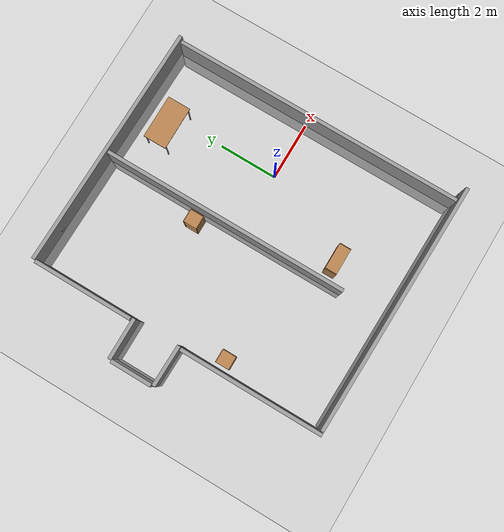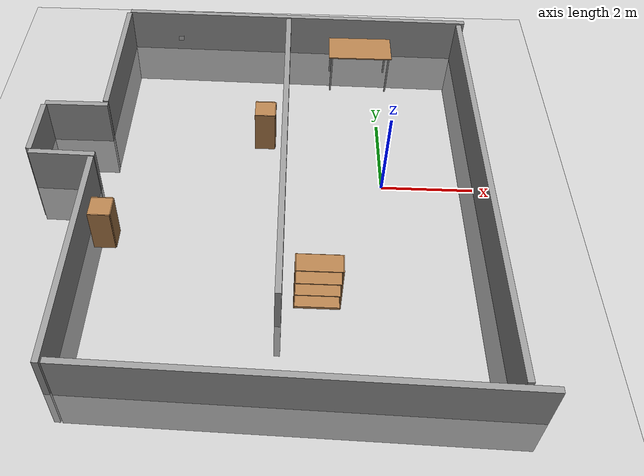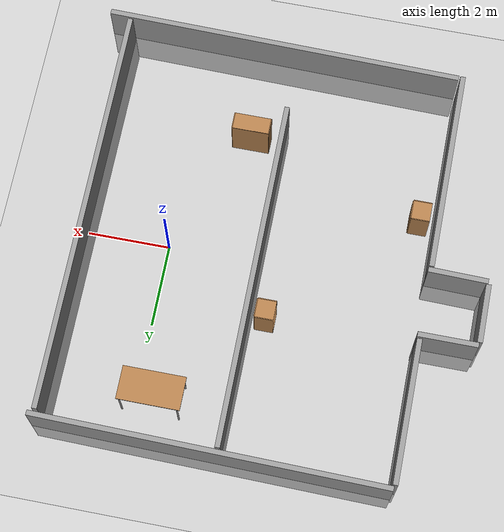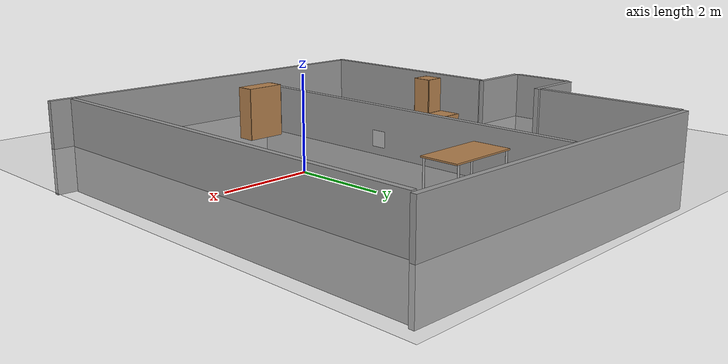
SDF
<sdf version="1.6">
 <world name="default">
  <light name="sun" type="directional">
   <pose>0 0 10 0 -0 0</pose>
   <diffuse>0.8 0.8 0.8 1</diffuse>
   <specular>0.2 0.2 0.2 1</specular>
   <attenuation>
    <range>1000</range>
    <constant>0.9</constant>
    <linear>0.01</linear>
    <quadratic>0.001</quadratic>
   </attenuation>
   <direction>-0.5 0.1 -0.9</direction>
  </light>
  <model name="ground_plane">
   <static>1</static>
   <link name="link">
    <collision name="collision">
     <geometry><plane><normal>0 0 1</normal><size>100 100</size></plane></geometry>
     <surface>
      <contact><collide_bitmask>65535</collide_bitmask></contact>
      <friction><ode><mu>100</mu><mu2>50</mu2></ode></friction>
     </surface>
    </collision>
    <visual name="visual">
     <cast_shadows>0</cast_shadows>
     <geometry><plane><normal>0 0 1</normal><size>100 100</size></plane></geometry>
     <material>
      <script><uri>file://media/materials/scripts/gazebo.material</uri><name>Gazebo/Grey</name></script>
     </material>
    </visual>
   </link>
  </model>
  <physics name="default_physics" default="0" type="ode">
   <real_time_update_rate>1000</real_time_update_rate>
   <max_step_size>0.001</max_step_size>
   <real_time_factor>1</real_time_factor>
   <ode>
    <solver>
     <type>quick</type>
     <iters>150</iters>
     <precon_iters>0</precon_iters>
     <sor>1.4</sor>
     <use_dynamic_moi_rescaling>1</use_dynamic_moi_rescaling>
    </solver>
    <constraints>
     <cfm>1e-05</cfm>
     <erp>0.2</erp>
     <contact_max_correcting_vel>2000</contact_max_correcting_vel>
     <contact_surface_layer>0.01</contact_surface_layer>
    </constraints>
   </ode>
  </physics>
  <scene><ambient>0.4 0.4 0.4 1</ambient><background>0.7 0.7 0.7 1</background><shadows>1</shadows></scene>
  <gravity>0 0 -9.8</gravity>
  <magnetic_field>6e-06 2.3e-05 -4.2e-05</magnetic_field>
  <atmosphere type="adiabatic"/>
  <audio><device>default</device></audio>
  <spherical_coordinates>
   <surface_model>EARTH_WGS84</surface_model>
   <latitude_deg>0</latitude_deg>
   <longitude_deg>0</longitude_deg>
   <elevation>0</elevation>
   <heading_deg>0</heading_deg>
  </spherical_coordinates>
  <model name="toiletenv">
   <link name="link_0">
    <inertial>
     <mass>3061.44</mass>
     <inertia><ixx>1709.99</ixx><ixy>0</ixy><ixz>0</ixz><iyy>1188.29</iyy><iyz>0</iyz><izz>529.767</izz></inertia>
    </inertial>
    <pose>-3.44068 0.35836 0 0 -0 0</pose>
    <gravity>0</gravity>
    <visual name="visual">
     <geometry><box><size>0.125789 1.43552 2.15452</size></box></geometry>
     <material>
      <lighting>1</lighting>
      <script><uri>file://media/materials/scripts/gazebo.material</uri><name>Gazebo/Grey</name></script>
      <shader type="vertex"><normal_map>__default__</normal_map></shader>
     </material>
    </visual>
    <collision name="collision">
     <geometry><box><size>0.125789 1.43552 2.15452</size></box></geometry>
     <surface>
      <friction>
       <ode><mu>1</mu><mu2>1</mu2><fdir1>0 0 0</fdir1><slip1>0</slip1><slip2>0</slip2></ode>
       <torsional>
        <coefficient>1</coefficient>
        <patch_radius>0</patch_radius>
        <surface_radius>0</surface_radius>
        <use_patch_radius>1</use_patch_radius>
        <ode><slip>0</slip></ode>
       </torsional>
      </friction>
      <bounce><restitution_coefficient>0</restitution_coefficient><threshold>1e+06</threshold></bounce>
      <contact>
       <collide_without_contact>0</collide_without_contact>
       <collide_without_contact_bitmask>1</collide_without_contact_bitmask>
       <collide_bitmask>1</collide_bitmask>
       <ode>
        <soft_cfm>0</soft_cfm>
        <soft_erp>0.2</soft_erp>
        <kp>1e+13</kp>
        <kd>1</kd>
        <max_vel>0.01</max_vel>
        <min_depth>0</min_depth>
       </ode>
       <bullet>
        <split_impulse>1</split_impulse>
        <split_impulse_penetration_threshold>-0.01</split_impulse_penetration_threshold>
        <soft_cfm>0</soft_cfm>
        <soft_erp>0.2</soft_erp>
        <kp>1e+13</kp>
        <kd>1</kd>
       </bullet>
      </contact>
     </surface>
    </collision>
   </link>
   <link name="link_0_clone">
    <inertial>
     <mass>3061.44</mass>
     <inertia><ixx>1709.99</ixx><ixy>0</ixy><ixz>0</ixz><iyy>1188.29</iyy><iyz>0</iyz><izz>529.767</izz></inertia>
    </inertial>
    <pose>-2.70872 1.14414 0 0 0 -1.57036</pose>
    <gravity>0</gravity>
    <visual name="visual">
     <geometry><box><size>0.125789 1.43552 2.15452</size></box></geometry>
     <material>
      <lighting>1</lighting>
      <script><uri>file://media/materials/scripts/gazebo.material</uri><name>Gazebo/Grey</name></script>
      <shader type="vertex"><normal_map>__default__</normal_map></shader>
     </material>
    </visual>
    <collision name="collision">
     <geometry><box><size>0.125789 1.43552 2.15452</size></box></geometry>
     <surface>
      <friction>
       <ode><mu>1</mu><mu2>1</mu2><fdir1>0 0 0</fdir1><slip1>0</slip1><slip2>0</slip2></ode>
       <torsional>
        <coefficient>1</coefficient>
        <patch_radius>0</patch_radius>
        <surface_radius>0</surface_radius>
        <use_patch_radius>1</use_patch_radius>
        <ode><slip>0</slip></ode>
       </torsional>
      </friction>
      <bounce><restitution_coefficient>0</restitution_coefficient><threshold>1e+06</threshold></bounce>
      <contact>
       <collide_without_contact>0</collide_without_contact>
       <collide_without_contact_bitmask>1</collide_without_contact_bitmask>
       <collide_bitmask>1</collide_bitmask>
       <ode>
        <soft_cfm>0</soft_cfm>
        <soft_erp>0.2</soft_erp>
        <kp>1e+13</kp>
        <kd>1</kd>
        <max_vel>0.01</max_vel>
        <min_depth>0</min_depth>
       </ode>
       <bullet>
        <split_impulse>1</split_impulse>
        <split_impulse_penetration_threshold>-0.01</split_impulse_penetration_threshold>
        <soft_cfm>0</soft_cfm>
        <soft_erp>0.2</soft_erp>
        <kp>1e+13</kp>
        <kd>1</kd>
       </bullet>
      </contact>
     </surface>
    </collision>
   </link>
   <link name="link_0_clone_0">
    <inertial>
     <mass>3061.44</mass>
     <inertia><ixx>1709.99</ixx><ixy>0</ixy><ixz>0</ixz><iyy>1188.29</iyy><iyz>0</iyz><izz>529.767</izz></inertia>
    </inertial>
    <pose>-2.70687 -0.448529 0 0 -0 1.54952</pose>
    <gravity>0</gravity>
    <visual name="visual">
     <geometry><box><size>0.125789 1.43552 2.15452</size></box></geometry>
     <material>
      <lighting>1</lighting>
      <script><uri>file://media/materials/scripts/gazebo.material</uri><name>Gazebo/Grey</name></script>
      <shader type="vertex"><normal_map>__default__</normal_map></shader>
     </material>
    </visual>
    <collision name="collision">
     <geometry><box><size>0.125789 1.43552 2.15452</size></box></geometry>
     <surface>
      <friction>
       <ode><mu>1</mu><mu2>1</mu2><fdir1>0 0 0</fdir1><slip1>0</slip1><slip2>0</slip2></ode>
       <torsional>
        <coefficient>1</coefficient>
        <patch_radius>0</patch_radius>
        <surface_radius>0</surface_radius>
        <use_patch_radius>1</use_patch_radius>
        <ode><slip>0</slip></ode>
       </torsional>
      </friction>
      <bounce><restitution_coefficient>0</restitution_coefficient><threshold>1e+06</threshold></bounce>
      <contact>
       <collide_without_contact>0</collide_without_contact>
       <collide_without_contact_bitmask>1</collide_without_contact_bitmask>
       <collide_bitmask>1</collide_bitmask>
       <ode>
        <soft_cfm>0</soft_cfm>
        <soft_erp>0.2</soft_erp>
        <kp>1e+13</kp>
        <kd>1</kd>
        <max_vel>0.01</max_vel>
        <min_depth>0</min_depth>
       </ode>
       <bullet>
        <split_impulse>1</split_impulse>
        <split_impulse_penetration_threshold>-0.01</split_impulse_penetration_threshold>
        <soft_cfm>0</soft_cfm>
        <soft_erp>0.2</soft_erp>
        <kp>1e+13</kp>
        <kd>1</kd>
       </bullet>
      </contact>
     </surface>
    </collision>
   </link>
   <link name="link_0_clone_1">
    <inertial>
     <mass>10647.6</mass>
     <inertia><ixx>26236.3</ixx><ixy>0</ixy><ixz>0</ixz><iyy>4132.83</iyy><iyz>0</iyz><izz>22131.5</izz></inertia>
    </inertial>
    <pose>-2.05907 -3.04924 0 0 -0 0</pose>
    <gravity>0</gravity>
    <visual name="visual">
     <geometry><box><size>0.125789 4.99268 2.15452</size></box></geometry>
     <material>
      <lighting>1</lighting>
      <script><uri>file://media/materials/scripts/gazebo.material</uri><name>Gazebo/Grey</name></script>
      <shader type="vertex"><normal_map>__default__</normal_map></shader>
     </material>
    </visual>
    <collision name="collision">
     <geometry><box><size>0.125789 4.99268 2.15452</size></box></geometry>
     <surface>
      <friction>
       <ode><mu>1</mu><mu2>1</mu2><fdir1>0 0 0</fdir1><slip1>0</slip1><slip2>0</slip2></ode>
       <torsional>
        <coefficient>1</coefficient>
        <patch_radius>0</patch_radius>
        <surface_radius>0</surface_radius>
        <use_patch_radius>1</use_patch_radius>
        <ode><slip>0</slip></ode>
       </torsional>
      </friction>
      <bounce><restitution_coefficient>0</restitution_coefficient><threshold>1e+06</threshold></bounce>
      <contact>
       <collide_without_contact>0</collide_without_contact>
       <collide_without_contact_bitmask>1</collide_without_contact_bitmask>
       <collide_bitmask>1</collide_bitmask>
       <ode>
        <soft_cfm>0</soft_cfm>
        <soft_erp>0.2</soft_erp>
        <kp>1e+13</kp>
        <kd>1</kd>
        <max_vel>0.01</max_vel>
        <min_depth>0</min_depth>
       </ode>
       <bullet>
        <split_impulse>1</split_impulse>
        <split_impulse_penetration_threshold>-0.01</split_impulse_penetration_threshold>
        <soft_cfm>0</soft_cfm>
        <soft_erp>0.2</soft_erp>
        <kp>1e+13</kp>
        <kd>1</kd>
       </bullet>
      </contact>
     </surface>
    </collision>
   </link>
   <link name="link_0_clone_2">
    <inertial>
     <mass>7404.1</mass>
     <inertia><ixx>10301.1</ixx><ixy>0</ixy><ixz>0</ixz><iyy>2873.89</iyy><iyz>0</iyz><izz>7446.75</izz></inertia>
    </inertial>
    <pose>-2.06068 2.98173 0 0 -0 0</pose>
    <gravity>0</gravity>
    <visual name="visual">
     <geometry><box><size>0.125789 3.47179 2.15452</size></box></geometry>
     <material>
      <lighting>1</lighting>
      <script><uri>file://media/materials/scripts/gazebo.material</uri><name>Gazebo/Grey</name></script>
      <shader type="vertex"><normal_map>__default__</normal_map></shader>
     </material>
    </visual>
    <collision name="collision">
     <geometry><box><size>0.125789 3.47179 2.15452</size></box></geometry>
     <surface>
      <friction>
       <ode><mu>1</mu><mu2>1</mu2><fdir1>0 0 0</fdir1><slip1>0</slip1><slip2>0</slip2></ode>
       <torsional>
        <coefficient>1</coefficient>
        <patch_radius>0</patch_radius>
        <surface_radius>0</surface_radius>
        <use_patch_radius>1</use_patch_radius>
        <ode><slip>0</slip></ode>
       </torsional>
      </friction>
      <bounce><restitution_coefficient>0</restitution_coefficient><threshold>1e+06</threshold></bounce>
      <contact>
       <collide_without_contact>0</collide_without_contact>
       <collide_without_contact_bitmask>1</collide_without_contact_bitmask>
       <collide_bitmask>1</collide_bitmask>
       <ode>
        <soft_cfm>0</soft_cfm>
        <soft_erp>0.2</soft_erp>
        <kp>1e+13</kp>
        <kd>1</kd>
        <max_vel>0.01</max_vel>
        <min_depth>0</min_depth>
       </ode>
       <bullet>
        <split_impulse>1</split_impulse>
        <split_impulse_penetration_threshold>-0.01</split_impulse_penetration_threshold>
        <soft_cfm>0</soft_cfm>
        <soft_erp>0.2</soft_erp>
        <kp>1e+13</kp>
        <kd>1</kd>
       </bullet>
      </contact>
     </surface>
    </collision>
   </link>
   <link name="link_0_clone_3">
    <inertial>
     <mass>18266.8</mass>
     <inertia><ixx>118745</ixx><ixy>0</ixy><ixz>0</ixz><iyy>7090.22</iyy><iyz>0</iyz><izz>111703</izz></inertia>
    </inertial>
    <pose>2.02981 0.357389 0 0 -0 0</pose>
    <gravity>0</gravity>
    <visual name="visual">
     <geometry><box><size>0.125789 8.56535 2.15452</size></box></geometry>
     <material>
      <lighting>1</lighting>
      <script><uri>file://media/materials/scripts/gazebo.material</uri><name>Gazebo/Grey</name></script>
      <shader type="vertex"><normal_map>__default__</normal_map></shader>
     </material>
    </visual>
    <collision name="collision">
     <geometry><box><size>0.125789 8.56535 2.15452</size></box></geometry>
     <surface>
      <friction>
       <ode><mu>1</mu><mu2>1</mu2><fdir1>0 0 0</fdir1><slip1>0</slip1><slip2>0</slip2></ode>
       <torsional>
        <coefficient>1</coefficient>
        <patch_radius>0</patch_radius>
        <surface_radius>0</surface_radius>
        <use_patch_radius>1</use_patch_radius>
        <ode><slip>0</slip></ode>
       </torsional>
      </friction>
      <bounce><restitution_coefficient>0</restitution_coefficient><threshold>1e+06</threshold></bounce>
      <contact>
       <collide_without_contact>0</collide_without_contact>
       <collide_without_contact_bitmask>1</collide_without_contact_bitmask>
       <collide_bitmask>1</collide_bitmask>
       <ode>
        <soft_cfm>0</soft_cfm>
        <soft_erp>0.2</soft_erp>
        <kp>1e+13</kp>
        <kd>1</kd>
        <max_vel>0.01</max_vel>
        <min_depth>0</min_depth>
       </ode>
       <bullet>
        <split_impulse>1</split_impulse>
        <split_impulse_penetration_threshold>-0.01</split_impulse_penetration_threshold>
        <soft_cfm>0</soft_cfm>
        <soft_erp>0.2</soft_erp>
        <kp>1e+13</kp>
        <kd>1</kd>
       </bullet>
      </contact>
     </surface>
    </collision>
   </link>
   <link name="link_0_clone_3_clone">
    <inertial>
     <mass>21541</mass>
     <inertia><ixx>191473</ixx><ixy>0</ixy><ixz>0</ixz><iyy>8361.12</iyy><iyz>0</iyz><izz>183169</izz></inertia>
    </inertial>
    <pose>6.30349 -0.503106 0 0 -0 0</pose>
    <gravity>0</gravity>
    <visual name="visual">
     <geometry><box><size>0.125789 10.1006 2.15452</size></box></geometry>
     <material>
      <lighting>1</lighting>
      <script><uri>file://media/materials/scripts/gazebo.material</uri><name>Gazebo/Grey</name></script>
      <shader type="vertex"><normal_map>__default__</normal_map></shader>
     </material>
    </visual>
    <collision name="collision">
     <geometry><box><size>0.125789 10.1006 2.15452</size></box></geometry>
     <surface>
      <friction>
       <ode><mu>1</mu><mu2>1</mu2><fdir1>0 0 0</fdir1><slip1>0</slip1><slip2>0</slip2></ode>
       <torsional>
        <coefficient>1</coefficient>
        <patch_radius>0</patch_radius>
        <surface_radius>0</surface_radius>
        <use_patch_radius>1</use_patch_radius>
        <ode><slip>0</slip></ode>
       </torsional>
      </friction>
      <bounce><restitution_coefficient>0</restitution_coefficient><threshold>1e+06</threshold></bounce>
      <contact>
       <collide_without_contact>0</collide_without_contact>
       <collide_without_contact_bitmask>1</collide_without_contact_bitmask>
       <collide_bitmask>1</collide_bitmask>
       <ode>
        <soft_cfm>0</soft_cfm>
        <soft_erp>0.2</soft_erp>
        <kp>1e+13</kp>
        <kd>1</kd>
        <max_vel>0.01</max_vel>
        <min_depth>0</min_depth>
       </ode>
       <bullet>
        <split_impulse>1</split_impulse>
        <split_impulse_penetration_threshold>-0.01</split_impulse_penetration_threshold>
        <soft_cfm>0</soft_cfm>
        <soft_erp>0.2</soft_erp>
        <kp>1e+13</kp>
        <kd>1</kd>
       </bullet>
      </contact>
     </surface>
    </collision>
   </link>
   <link name="link_0_clone_4">
    <inertial>
     <mass>18126.2</mass>
     <inertia><ixx>116131</ixx><ixy>0</ixy><ixz>0</ixz><iyy>7035.65</iyy><iyz>0</iyz><izz>109143</izz></inertia>
    </inertial>
    <pose>2.20964 4.73685 0 0 0 -1.587</pose>
    <gravity>0</gravity>
    <visual name="visual">
     <geometry><box><size>0.125789 8.49938 2.15452</size></box></geometry>
     <material>
      <lighting>1</lighting>
      <script><uri>file://media/materials/scripts/gazebo.material</uri><name>Gazebo/Grey</name></script>
      <shader type="vertex"><normal_map>__default__</normal_map></shader>
     </material>
    </visual>
    <collision name="collision">
     <geometry><box><size>0.125789 8.49938 2.15452</size></box></geometry>
     <surface>
      <friction>
       <ode><mu>1</mu><mu2>1</mu2><fdir1>0 0 0</fdir1><slip1>0</slip1><slip2>0</slip2></ode>
       <torsional>
        <coefficient>1</coefficient>
        <patch_radius>0</patch_radius>
        <surface_radius>0</surface_radius>
        <use_patch_radius>1</use_patch_radius>
        <ode><slip>0</slip></ode>
       </torsional>
      </friction>
      <bounce><restitution_coefficient>0</restitution_coefficient><threshold>1e+06</threshold></bounce>
      <contact>
       <collide_without_contact>0</collide_without_contact>
       <collide_without_contact_bitmask>1</collide_without_contact_bitmask>
       <collide_bitmask>1</collide_bitmask>
       <ode>
        <soft_cfm>0</soft_cfm>
        <soft_erp>0.2</soft_erp>
        <kp>1e+13</kp>
        <kd>1</kd>
        <max_vel>0.01</max_vel>
        <min_depth>0</min_depth>
       </ode>
       <bullet>
        <split_impulse>1</split_impulse>
        <split_impulse_penetration_threshold>-0.01</split_impulse_penetration_threshold>
        <soft_cfm>0</soft_cfm>
        <soft_erp>0.2</soft_erp>
        <kp>1e+13</kp>
        <kd>1</kd>
       </bullet>
      </contact>
     </surface>
    </collision>
   </link>
   <link name="link_0_clone_5">
    <inertial>
     <mass>18728.3</mass>
     <inertia><ixx>127604</ixx><ixy>0</ixy><ixz>0</ixz><iyy>7269.34</iyy><iyz>0</iyz><izz>120384</izz></inertia>
    </inertial>
    <pose>2.43307 -5.57761 0 0 0 -1.59076</pose>
    <gravity>0</gravity>
    <visual name="visual">
     <geometry><box><size>0.125789 8.78176 2.15452</size></box></geometry>
     <material>
      <lighting>1</lighting>
      <script><uri>file://media/materials/scripts/gazebo.material</uri><name>Gazebo/Grey</name></script>
      <shader type="vertex"><normal_map>__default__</normal_map></shader>
     </material>
    </visual>
    <collision name="collision">
     <geometry><box><size>0.125789 8.78176 2.15452</size></box></geometry>
     <surface>
      <friction>
       <ode><mu>1</mu><mu2>1</mu2><fdir1>0 0 0</fdir1><slip1>0</slip1><slip2>0</slip2></ode>
       <torsional>
        <coefficient>1</coefficient>
        <patch_radius>0</patch_radius>
        <surface_radius>0</surface_radius>
        <use_patch_radius>1</use_patch_radius>
        <ode><slip>0</slip></ode>
       </torsional>
      </friction>
      <bounce><restitution_coefficient>0</restitution_coefficient><threshold>1e+06</threshold></bounce>
      <contact>
       <collide_without_contact>0</collide_without_contact>
       <collide_without_contact_bitmask>1</collide_without_contact_bitmask>
       <collide_bitmask>1</collide_bitmask>
       <ode>
        <soft_cfm>0</soft_cfm>
        <soft_erp>0.2</soft_erp>
        <kp>1e+13</kp>
        <kd>1</kd>
        <max_vel>0.01</max_vel>
        <min_depth>0</min_depth>
       </ode>
       <bullet>
        <split_impulse>1</split_impulse>
        <split_impulse_penetration_threshold>-0.01</split_impulse_penetration_threshold>
        <soft_cfm>0</soft_cfm>
        <soft_erp>0.2</soft_erp>
        <kp>1e+13</kp>
        <kd>1</kd>
       </bullet>
      </contact>
     </surface>
    </collision>
   </link>
   <static>1</static>
   <pose>-4.22209 0.180638 0 0 -0 0</pose>
  </model>
  <model name="table">
   <static>1</static>
   <link name="link">
    <collision name="surface">
     <pose>0 0 1 0 -0 0</pose>
     <geometry><box><size>1.5 0.8 0.03</size></box></geometry>
     <surface><friction><ode><mu>0.6</mu><mu2>0.6</mu2></ode></friction></surface>
    </collision>
    <visual name="visual1">
     <pose>0 0 1 0 -0 0</pose>
     <geometry><box><size>1.5 0.8 0.03</size></box></geometry>
     <material>
      <script><uri>file://media/materials/scripts/gazebo.material</uri><name>Gazebo/Wood</name></script>
     </material>
    </visual>
    <collision name="front_left_leg">
     <pose>0.68 0.38 0.5 0 -0 0</pose>
     <geometry><cylinder><radius>0.02</radius><length>1</length></cylinder></geometry>
    </collision>
    <visual name="front_left_leg">
     <pose>0.68 0.38 0.5 0 -0 0</pose>
     <geometry><cylinder><radius>0.02</radius><length>1</length></cylinder></geometry>
     <material>
      <script><uri>file://media/materials/scripts/gazebo.material</uri><name>Gazebo/Grey</name></script>
     </material>
    </visual>
    <collision name="front_right_leg">
     <pose>0.68 -0.38 0.5 0 -0 0</pose>
     <geometry><cylinder><radius>0.02</radius><length>1</length></cylinder></geometry>
    </collision>
    <visual name="front_right_leg">
     <pose>0.68 -0.38 0.5 0 -0 0</pose>
     <geometry><cylinder><radius>0.02</radius><length>1</length></cylinder></geometry>
     <material>
      <script><uri>file://media/materials/scripts/gazebo.material</uri><name>Gazebo/Grey</name></script>
     </material>
    </visual>
    <collision name="back_right_leg">
     <pose>-0.68 -0.38 0.5 0 -0 0</pose>
     <geometry><cylinder><radius>0.02</radius><length>1</length></cylinder></geometry>
    </collision>
    <visual name="back_right_leg">
     <pose>-0.68 -0.38 0.5 0 -0 0</pose>
     <geometry><cylinder><radius>0.02</radius><length>1</length></cylinder></geometry>
     <material>
      <script><uri>file://media/materials/scripts/gazebo.material</uri><name>Gazebo/Grey</name></script>
     </material>
    </visual>
    <collision name="back_left_leg">
     <pose>-0.68 0.38 0.5 0 -0 0</pose>
     <geometry><cylinder><radius>0.02</radius><length>1</length></cylinder></geometry>
    </collision>
    <visual name="back_left_leg">
     <pose>-0.68 0.38 0.5 0 -0 0</pose>
     <geometry><cylinder><radius>0.02</radius><length>1</length></cylinder></geometry>
     <material>
      <script><uri>file://media/materials/scripts/gazebo.material</uri><name>Gazebo/Grey</name></script>
     </material>
    </visual>
   </link>
   <pose>-0.426692 3.73604 0 0 -0 0</pose>
  </model>
  <model name="bookshelf">
   <static>1</static>
   <link name="link">
    <inertial><mass>1</mass></inertial>
    <collision name="back">
     <pose>0 0.005 0.6 0 -0 0</pose>
     <geometry><box><size>0.9 0.01 1.2</size></box></geometry>
    </collision>
    <visual name="visual1">
     <pose>0 0.005 0.6 0 -0 0</pose>
     <geometry><box><size>0.9 0.01 1.2</size></box></geometry>
     <material>
      <script><uri>file://media/materials/scripts/gazebo.material</uri><name>Gazebo/Wood</name></script>
     </material>
    </visual>
    <collision name="left_side">
     <pose>0.45 -0.195 0.6 0 -0 0</pose>
     <geometry><box><size>0.02 0.4 1.2</size></box></geometry>
    </collision>
    <visual name="visual2">
     <pose>0.45 -0.195 0.6 0 -0 0</pose>
     <geometry><box><size>0.02 0.4 1.2</size></box></geometry>
     <material>
      <script><uri>file://media/materials/scripts/gazebo.material</uri><name>Gazebo/Wood</name></script>
     </material>
    </visual>
    <collision name="right_side">
     <pose>-0.45 -0.195 0.6 0 -0 0</pose>
     <geometry><box><size>0.02 0.4 1.2</size></box></geometry>
    </collision>
    <visual name="visual3">
     <pose>-0.45 -0.195 0.6 0 -0 0</pose>
     <geometry><box><size>0.02 0.4 1.2</size></box></geometry>
     <material>
      <script><uri>file://media/materials/scripts/gazebo.material</uri><name>Gazebo/Wood</name></script>
     </material>
    </visual>
    <collision name="bottom">
     <pose>0 -0.195 0.03 0 -0 0</pose>
     <geometry><box><size>0.88 0.4 0.06</size></box></geometry>
    </collision>
    <visual name="visual4">
     <pose>0 -0.195 0.03 0 -0 0</pose>
     <geometry><box><size>0.88 0.4 0.06</size></box></geometry>
     <material>
      <script><uri>file://media/materials/scripts/gazebo.material</uri><name>Gazebo/Wood</name></script>
     </material>
    </visual>
    <collision name="top">
     <pose>0 -0.195 1.19 0 -0 0</pose>
     <geometry><box><size>0.88 0.4 0.02</size></box></geometry>
    </collision>
    <visual name="visual5">
     <pose>0 -0.195 1.19 0 -0 0</pose>
     <geometry><box><size>0.88 0.4 0.02</size></box></geometry>
     <material>
      <script><uri>file://media/materials/scripts/gazebo.material</uri><name>Gazebo/Wood</name></script>
     </material>
    </visual>
    <collision name="low_shelf">
     <pose>0 -0.195 0.43 0 -0 0</pose>
     <geometry><box><size>0.88 0.4 0.02</size></box></geometry>
    </collision>
    <visual name="visual6">
     <pose>0 -0.195 0.43 0 -0 0</pose>
     <geometry><box><size>0.88 0.4 0.02</size></box></geometry>
     <material>
      <script><uri>file://media/materials/scripts/gazebo.material</uri><name>Gazebo/Wood</name></script>
     </material>
    </visual>
    <collision name="high_shelf">
     <pose>0 -0.195 0.8 0 -0 0</pose>
     <geometry><box><size>0.88 0.4 0.02</size></box></geometry>
    </collision>
    <visual name="visual7">
     <pose>0 -0.195 0.8 0 -0 0</pose>
     <geometry><box><size>0.88 0.4 0.02</size></box></geometry>
     <material>
      <script><uri>file://media/materials/scripts/gazebo.material</uri><name>Gazebo/Wood</name></script>
     </material>
    </visual>
   </link>
   <pose>-1.43799 -2.91079 0 0 -0 0</pose>
  </model>
  <model name="cabinet">
   <static>1</static>
   <link name="cabinet_bottom_plate">
    <inertial>
     <pose>0 0 -1 0 -0 0</pose>
     <inertia><ixx>2.05</ixx><ixy>0</ixy><ixz>0</ixz><iyy>2.05</iyy><iyz>0</iyz><izz>2.05</izz></inertia>
     <mass>25</mass>
    </inertial>
    <collision name="cabinet_bottom_plate_geom">
     <pose>0 0 0.01 0 -0 0</pose>
     <geometry><box><size>0.45 0.45 0.02</size></box></geometry>
    </collision>
    <visual name="cabinet_bottom_plate_geom_visual">
     <pose>0 0 0.01 0 -0 0</pose>
     <geometry><box><size>0.45 0.45 0.02</size></box></geometry>
     <material>
      <script><uri>file://media/materials/scripts/gazebo.material</uri><name>Gazebo/Wood</name></script>
     </material>
    </visual>
    <collision name="cabinet_bottom_plate_geom_cabinet_back_plate">
     <pose>0.235 0 0.51 0 -0 0</pose>
     <geometry><box><size>0.02 0.45 1.02</size></box></geometry>
    </collision>
    <visual name="cabinet_bottom_plate_geom_cabinet_back_plate_visual">
     <pose>0.235 0 0.51 0 -0 0</pose>
     <geometry><box><size>0.02 0.45 1.02</size></box></geometry>
     <material>
      <script><uri>file://media/materials/scripts/gazebo.material</uri><name>Gazebo/Wood</name></script>
     </material>
    </visual>
    <collision name="cabinet_bottom_plate_geom_cabinet_left_plate">
     <pose>0 0.235 0.51 0 -0 0</pose>
     <geometry><box><size>0.45 0.02 1.02</size></box></geometry>
    </collision>
    <visual name="cabinet_bottom_plate_geom_cabinet_left_plate_visual">
     <pose>0 0.235 0.51 0 -0 0</pose>
     <geometry><box><size>0.45 0.02 1.02</size></box></geometry>
     <material>
      <script><uri>file://media/materials/scripts/gazebo.material</uri><name>Gazebo/Wood</name></script>
     </material>
    </visual>
    <collision name="cabinet_bottom_plate_geom_cabinet_middle_plate">
     <pose>0 0 0.51 0 -0 0</pose>
     <geometry><box><size>0.45 0.45 0.02</size></box></geometry>
    </collision>
    <visual name="cabinet_bottom_plate_geom_cabinet_middle_plate_visual">
     <pose>0 0 0.51 0 -0 0</pose>
     <geometry><box><size>0.45 0.45 0.02</size></box></geometry>
     <material>
      <script><uri>file://media/materials/scripts/gazebo.material</uri><name>Gazebo/Wood</name></script>
     </material>
    </visual>
    <collision name="cabinet_bottom_plate_geom_cabinet_right_plate">
     <pose>0 -0.235 0.51 0 -0 0</pose>
     <geometry><box><size>0.45 0.02 1.02</size></box></geometry>
    </collision>
    <visual name="cabinet_bottom_plate_geom_cabinet_right_plate_visual">
     <pose>0 -0.235 0.51 0 -0 0</pose>
     <geometry><box><size>0.45 0.02 1.02</size></box></geometry>
     <material>
      <script><uri>file://media/materials/scripts/gazebo.material</uri><name>Gazebo/Wood</name></script>
     </material>
    </visual>
    <collision name="cabinet_bottom_plate_geom_cabinet_top_plate">
     <pose>0 0 1.01 0 -0 0</pose>
     <geometry><box><size>0.45 0.45 0.02</size></box></geometry>
    </collision>
    <visual name="cabinet_bottom_plate_geom_cabinet_top_plate_visual">
     <pose>0 0 1.01 0 -0 0</pose>
     <geometry><box><size>0.45 0.45 0.02</size></box></geometry>
     <material>
      <script><uri>file://media/materials/scripts/gazebo.material</uri><name>Gazebo/Wood</name></script>
     </material>
    </visual>
   </link>
   <pose>-2.64528 1.38874 0 0 -0 0</pose>
  </model>
  <model name="cabinet_0">
   <static>1</static>
   <link name="cabinet_bottom_plate">
    <inertial>
     <pose>0 0 -1 0 -0 0</pose>
     <inertia><ixx>2.05</ixx><ixy>0</ixy><ixz>0</ixz><iyy>2.05</iyy><iyz>0</iyz><izz>2.05</izz></inertia>
     <mass>25</mass>
    </inertial>
    <collision name="cabinet_bottom_plate_geom">
     <pose>0 0 0.01 0 -0 0</pose>
     <geometry><box><size>0.45 0.45 0.02</size></box></geometry>
    </collision>
    <visual name="cabinet_bottom_plate_geom_visual">
     <pose>0 0 0.01 0 -0 0</pose>
     <geometry><box><size>0.45 0.45 0.02</size></box></geometry>
     <material>
      <script><uri>file://media/materials/scripts/gazebo.material</uri><name>Gazebo/Wood</name></script>
     </material>
    </visual>
    <collision name="cabinet_bottom_plate_geom_cabinet_back_plate">
     <pose>0.235 0 0.51 0 -0 0</pose>
     <geometry><box><size>0.02 0.45 1.02</size></box></geometry>
    </collision>
    <visual name="cabinet_bottom_plate_geom_cabinet_back_plate_visual">
     <pose>0.235 0 0.51 0 -0 0</pose>
     <geometry><box><size>0.02 0.45 1.02</size></box></geometry>
     <material>
      <script><uri>file://media/materials/scripts/gazebo.material</uri><name>Gazebo/Wood</name></script>
     </material>
    </visual>
    <collision name="cabinet_bottom_plate_geom_cabinet_left_plate">
     <pose>0 0.235 0.51 0 -0 0</pose>
     <geometry><box><size>0.45 0.02 1.02</size></box></geometry>
    </collision>
    <visual name="cabinet_bottom_plate_geom_cabinet_left_plate_visual">
     <pose>0 0.235 0.51 0 -0 0</pose>
     <geometry><box><size>0.45 0.02 1.02</size></box></geometry>
     <material>
      <script><uri>file://media/materials/scripts/gazebo.material</uri><name>Gazebo/Wood</name></script>
     </material>
    </visual>
    <collision name="cabinet_bottom_plate_geom_cabinet_middle_plate">
     <pose>0 0 0.51 0 -0 0</pose>
     <geometry><box><size>0.45 0.45 0.02</size></box></geometry>
    </collision>
    <visual name="cabinet_bottom_plate_geom_cabinet_middle_plate_visual">
     <pose>0 0 0.51 0 -0 0</pose>
     <geometry><box><size>0.45 0.45 0.02</size></box></geometry>
     <material>
      <script><uri>file://media/materials/scripts/gazebo.material</uri><name>Gazebo/Wood</name></script>
     </material>
    </visual>
    <collision name="cabinet_bottom_plate_geom_cabinet_right_plate">
     <pose>0 -0.235 0.51 0 -0 0</pose>
     <geometry><box><size>0.45 0.02 1.02</size></box></geometry>
    </collision>
    <visual name="cabinet_bottom_plate_geom_cabinet_right_plate_visual">
     <pose>0 -0.235 0.51 0 -0 0</pose>
     <geometry><box><size>0.45 0.02 1.02</size></box></geometry>
     <material>
      <script><uri>file://media/materials/scripts/gazebo.material</uri><name>Gazebo/Wood</name></script>
     </material>
    </visual>
    <collision name="cabinet_bottom_plate_geom_cabinet_top_plate">
     <pose>0 0 1.01 0 -0 0</pose>
     <geometry><box><size>0.45 0.45 0.02</size></box></geometry>
    </collision>
    <visual name="cabinet_bottom_plate_geom_cabinet_top_plate_visual">
     <pose>0 0 1.01 0 -0 0</pose>
     <geometry><box><size>0.45 0.45 0.02</size></box></geometry>
     <material>
      <script><uri>file://media/materials/scripts/gazebo.material</uri><name>Gazebo/Wood</name></script>
     </material>
    </visual>
   </link>
   <pose>-5.8369 -1.7199 0 0 -0 0</pose>
  </model>
  <model name="QrCube2.0">
   <link name="link_0">
    <inertial>
     <mass>1</mass>
     <inertia>
      <ixx>0.166667</ixx>
      <ixy>0</ixy>
      <ixz>0</ixz>
      <iyy>0.166667</iyy>
      <iyz>0</iyz>
      <izz>0.166667</izz>
     </inertia>
    </inertial>
    <pose>0 4e-06 0 0 -0 0</pose>
    <visual name="visual">
     <geometry>
      <mesh>
       <uri>/home/nick/catkin_ws/src/toiletcleaner/meshes/QR-codes/StandardQRCube.dae</uri>
       <scale>1 1 1</scale>
      </mesh>
     </geometry>
    </visual>
    <collision name="collision">
     <geometry>
      <mesh>
       <uri>/home/nick/catkin_ws/src/toiletcleaner/meshes/QR-codes/StandardQRCube.dae</uri>
       <scale>1 1 1</scale>
      </mesh>
     </geometry>
     <surface>
      <friction>
       <ode><mu>1</mu><mu2>1</mu2><fdir1>0 0 0</fdir1><slip1>0</slip1><slip2>0</slip2></ode>
       <torsional>
        <coefficient>1</coefficient>
        <patch_radius>0</patch_radius>
        <surface_radius>0</surface_radius>
        <use_patch_radius>1</use_patch_radius>
        <ode><slip>0</slip></ode>
       </torsional>
      </friction>
      <bounce><restitution_coefficient>0</restitution_coefficient><threshold>1e+06</threshold></bounce>
      <contact>
       <collide_without_contact>0</collide_without_contact>
       <collide_without_contact_bitmask>1</collide_without_contact_bitmask>
       <collide_bitmask>1</collide_bitmask>
       <ode>
        <soft_cfm>0</soft_cfm>
        <soft_erp>0.2</soft_erp>
        <kp>1e+13</kp>
        <kd>1</kd>
        <max_vel>0.01</max_vel>
        <min_depth>0</min_depth>
       </ode>
       <bullet>
        <split_impulse>1</split_impulse>
        <split_impulse_penetration_threshold>-0.01</split_impulse_penetration_threshold>
        <soft_cfm>0</soft_cfm>
        <soft_erp>0.2</soft_erp>
        <kp>1e+13</kp>
        <kd>1</kd>
       </bullet>
      </contact>
     </surface>
    </collision>
   </link>
   <static>1</static>
   <pose>-5 4.95 0.34 3.14159 -0 -1.57</pose>
  </model>
  <model name="CalibrationCheckboard">
   <link name="link_1">
    <inertial>
     <mass>1</mass>
     <inertia>
      <ixx>0.166667</ixx>
      <ixy>0</ixy>
      <ixz>0</ixz>
      <iyy>0.166667</iyy>
      <iyz>0</iyz>
      <izz>0.166667</izz>
     </inertia>
    </inertial>
    <pose>-4e-06 -0 0 0 -0 0</pose>
    <visual name="visual">
     <geometry>
      <mesh>
       <uri>/home/nick/catkin_ws/src/toiletcleaner/meshes/CalibrationCheckboard/CalibrationCheckboard2.dae</uri>
       <scale>2 2 2</scale>
      </mesh>
     </geometry>
    </visual>
    <collision name="collision">
     <geometry>
      <mesh>
       <uri>/home/nick/catkin_ws/src/toiletcleaner/meshes/CalibrationCheckboard/CalibrationCheckboard2.dae</uri>
       <scale>2 2 2</scale>
      </mesh>
     </geometry>
     <surface>
      <friction>
       <ode><mu>1</mu><mu2>1</mu2><fdir1>0 0 0</fdir1><slip1>0</slip1><slip2>0</slip2></ode>
       <torsional>
        <coefficient>1</coefficient>
        <patch_radius>0</patch_radius>
        <surface_radius>0</surface_radius>
        <use_patch_radius>1</use_patch_radius>
        <ode><slip>0</slip></ode>
       </torsional>
      </friction>
      <bounce><restitution_coefficient>0</restitution_coefficient><threshold>1e+06</threshold></bounce>
      <contact>
       <collide_without_contact>0</collide_without_contact>
       <collide_without_contact_bitmask>1</collide_without_contact_bitmask>
       <collide_bitmask>1</collide_bitmask>
       <ode>
        <soft_cfm>0</soft_cfm>
        <soft_erp>0.2</soft_erp>
        <kp>1e+13</kp>
        <kd>1</kd>
        <max_vel>0.01</max_vel>
        <min_depth>0</min_depth>
       </ode>
       <bullet>
        <split_impulse>1</split_impulse>
        <split_impulse_penetration_threshold>-0.01</split_impulse_penetration_threshold>
        <soft_cfm>0</soft_cfm>
        <soft_erp>0.2</soft_erp>
        <kp>1e+13</kp>
        <kd>1</kd>
       </bullet>
      </contact>
     </surface>
    </collision>
   </link>
   <static>1</static>
   <pose>-2.12991 0.045062 0.34 0 -0 0</pose>
  </model>
  <light name="user_spot_light_0" type="spot">
   <pose>-1.28977 0.136646 1 0 -0 0</pose>
   <diffuse>0.5 0.5 0.5 1</diffuse>
   <specular>0.1 0.1 0.1 1</specular>
   <direction>0 0 -1</direction>
   <attenuation>
    <range>20</range>
    <constant>0.5</constant>
    <linear>0.01</linear>
    <quadratic>0.001</quadratic>
   </attenuation>
   <cast_shadows>0</cast_shadows>
   <spot><inner_angle>0.6</inner_angle><outer_angle>1</outer_angle><falloff>1</falloff></spot>
  </light>
  <light name="user_spot_light_1" type="spot">
   <pose>-5.03384 4.35602 1 0 -0 0</pose>
   <diffuse>0.5 0.5 0.5 1</diffuse>
   <specular>0.1 0.1 0.1 1</specular>
   <direction>0 0 -1</direction>
   <attenuation>
    <range>20</range>
    <constant>0.5</constant>
    <linear>0.01</linear>
    <quadratic>0.001</quadratic>
   </attenuation>
   <cast_shadows>0</cast_shadows>
   <spot><inner_angle>0.6</inner_angle><outer_angle>1</outer_angle><falloff>1</falloff></spot>
  </light>
 </world>
</sdf>
